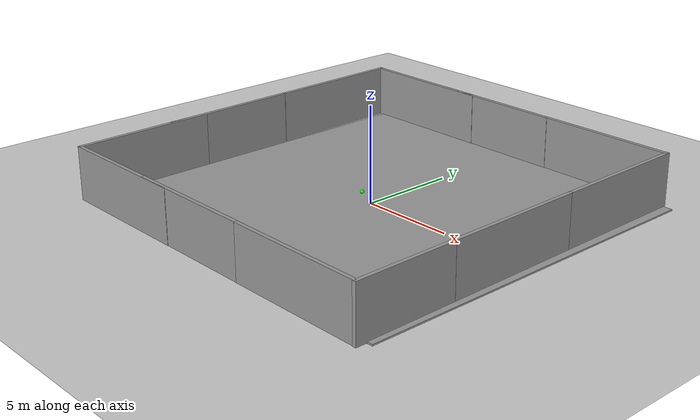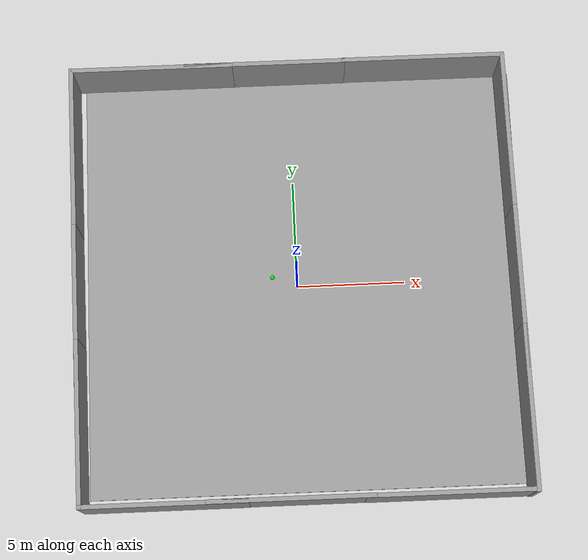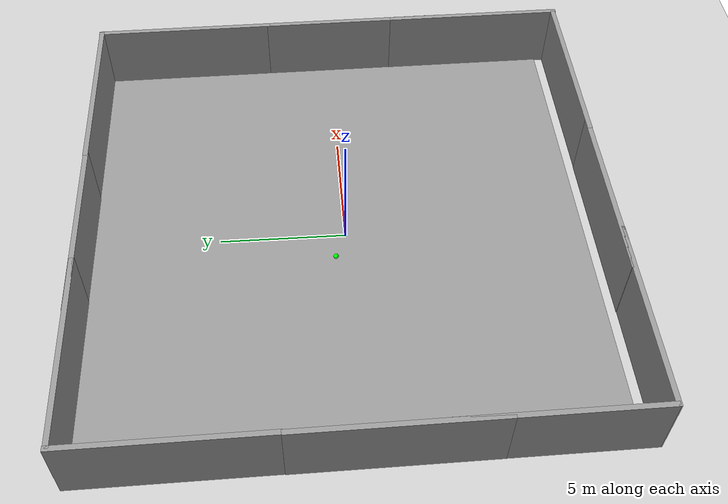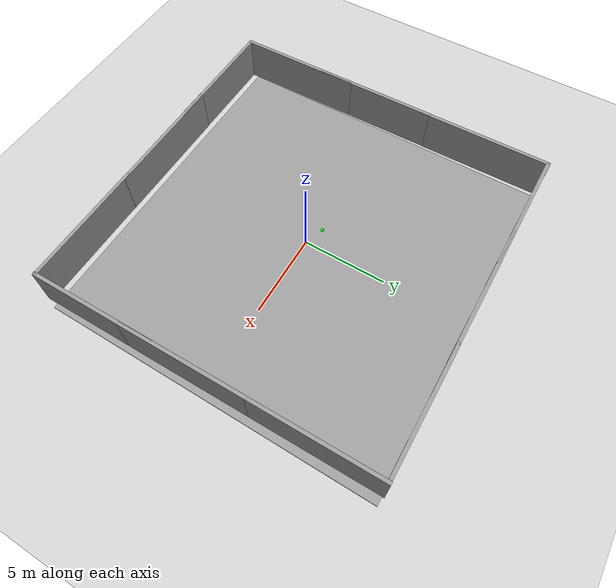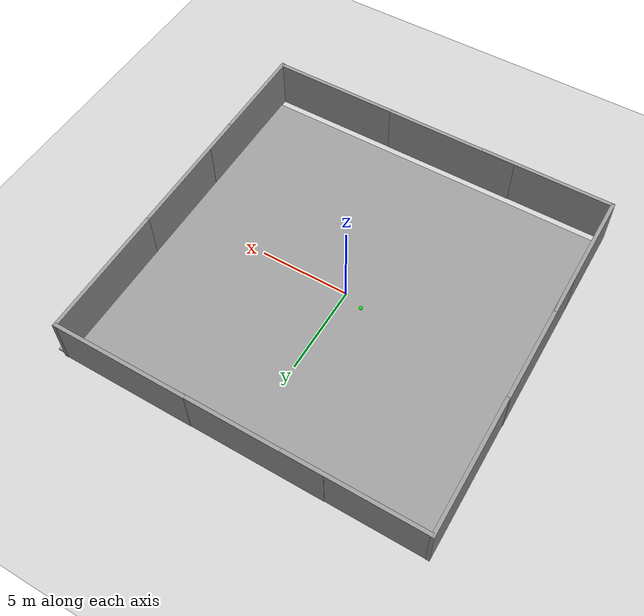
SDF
<sdf version="1.7">
 <world name="default">
  <light name="sun" type="directional">
   <pose>0 0 10 0 -0 0</pose>
   <diffuse>0.8 0.8 0.8 1</diffuse>
   <specular>0.2 0.2 0.2 1</specular>
   <attenuation>
    <range>1000</range>
    <constant>0.9</constant>
    <linear>0.01</linear>
    <quadratic>0.001</quadratic>
   </attenuation>
   <direction>-0.5 0.1 -0.9</direction>
   <spot><inner_angle>0</inner_angle><outer_angle>0</outer_angle><falloff>0</falloff></spot>
  </light>
  <gravity>0 0 -9.8</gravity>
  <magnetic_field>6e-06 2.3e-05 -4.2e-05</magnetic_field>
  <atmosphere type="adiabatic"/>
  <physics type="ode">
   <max_step_size>0.001</max_step_size>
   <real_time_factor>1</real_time_factor>
   <real_time_update_rate>1000</real_time_update_rate>
  </physics>
  <scene><ambient>0.4 0.4 0.4 1</ambient><background>0.7 0.7 0.7 1</background><shadows>1</shadows></scene>
  <spherical_coordinates>
   <surface_model>EARTH_WGS84</surface_model>
   <latitude_deg>0</latitude_deg>
   <longitude_deg>0</longitude_deg>
   <elevation>0</elevation>
   <heading_deg>0</heading_deg>
  </spherical_coordinates>
  <model name="ground_plane">
   <static>1</static>
   <link name="link">
    <collision name="collision">
     <geometry><plane><normal>0 0 1</normal><size>100 100</size></plane></geometry>
     <surface><friction><ode><mu>100</mu><mu2>50</mu2></ode></friction></surface>
    </collision>
    <visual name="visual">
     <cast_shadows>0</cast_shadows>
     <geometry><plane><normal>0 0 1</normal><size>100 100</size></plane></geometry>
     <material>
      <script><uri>file://media/materials/scripts/gazebo.material</uri><name>Gazebo/Grey</name></script>
     </material>
    </visual>
   </link>
  </model>
  <model name="unit_sphere_coloured">
   <link name="link">
    <inertial>
     <mass>0.00869617</mass>
     <inertia>
      <ixx>3.67736e-05</ixx>
      <ixy>0</ixy>
      <ixz>0</ixz>
      <iyy>3.67736e-05</iyy>
      <iyz>0</iyz>
      <izz>3.67736e-05</izz>
     </inertia>
    </inertial>
    <visual name="visual">
     <geometry><sphere><radius>0.102819</radius></sphere></geometry>
     <material>
      <script><name>Gazebo/Grey</name><uri>file://media/materials/scripts/gazebo.material</uri></script>
      <shader type="pixel"><normal_map>__default__</normal_map></shader>
      <ambient>0 1 0 0</ambient>
      <diffuse>0.7 0.7 0.7 1</diffuse>
      <specular>0.01 0.01 0.01 1</specular>
      <emissive>0 0 0 1</emissive>
     </material>
    </visual>
    <collision name="collision">
     <geometry><sphere><radius>0.102819</radius></sphere></geometry>
     <surface>
      <friction>
       <ode><mu>1</mu><mu2>1</mu2><fdir1>0 0 0</fdir1><slip1>0</slip1><slip2>0</slip2></ode>
       <torsional>
        <coefficient>1</coefficient>
        <patch_radius>0</patch_radius>
        <surface_radius>0</surface_radius>
        <use_patch_radius>1</use_patch_radius>
        <ode><slip>0</slip></ode>
       </torsional>
      </friction>
      <bounce><restitution_coefficient>0</restitution_coefficient><threshold>1e+06</threshold></bounce>
      <contact>
       <collide_without_contact>0</collide_without_contact>
       <collide_without_contact_bitmask>1</collide_without_contact_bitmask>
       <collide_bitmask>1</collide_bitmask>
       <ode>
        <soft_cfm>0</soft_cfm>
        <soft_erp>0.2</soft_erp>
        <kp>1e+13</kp>
        <kd>1</kd>
        <max_vel>0.01</max_vel>
        <min_depth>0</min_depth>
       </ode>
       <bullet>
        <split_impulse>1</split_impulse>
        <split_impulse_penetration_threshold>-0.01</split_impulse_penetration_threshold>
        <soft_cfm>0</soft_cfm>
        <soft_erp>0.2</soft_erp>
        <kp>1e+13</kp>
        <kd>1</kd>
       </bullet>
      </contact>
     </surface>
    </collision>
   </link>
   <static>0</static>
   <pose>-1.13967 0.449403 0.15581 0 -0 0</pose>
  </model>
  <model name="grey_wall">
   <static>1</static>
   <link name="link">
    <pose>0 0 1.4 0 -0 0</pose>
    <collision name="collision"><geometry><box><size>7.5 0.2 2.8</size></box></geometry></collision>
    <visual name="visual">
     <cast_shadows>0</cast_shadows>
     <geometry><box><size>7.5 0.2 2.8</size></box></geometry>
     <material>
      <script>
       <uri>model://grey_wall/materials/scripts</uri>
       <uri>model://grey_wall/materials/textures</uri>
       <name>vrc/grey_wall</name>
      </script>
     </material>
    </visual>
   </link>
   <pose>6.23127 10.0915 0 0 -0 0</pose>
  </model>
  <model name="grey_wall_clone">
   <static>1</static>
   <link name="link">
    <pose>0 0 1.4 0 -0 0</pose>
    <collision name="collision"><geometry><box><size>7.5 0.2 2.8</size></box></geometry></collision>
    <visual name="visual">
     <cast_shadows>0</cast_shadows>
     <geometry><box><size>7.5 0.2 2.8</size></box></geometry>
     <material>
      <script>
       <uri>model://grey_wall/materials/scripts</uri>
       <uri>model://grey_wall/materials/textures</uri>
       <name>vrc/grey_wall</name>
      </script>
     </material>
    </visual>
   </link>
   <pose>-1.12267 10.076 0 0 -0 0</pose>
  </model>
  <model name="grey_wall_clone_clone_0">
   <static>1</static>
   <link name="link">
    <pose>0 0 1.4 0 -0 0</pose>
    <collision name="collision"><geometry><box><size>7.5 0.2 2.8</size></box></geometry></collision>
    <visual name="visual">
     <cast_shadows>0</cast_shadows>
     <geometry><box><size>7.5 0.2 2.8</size></box></geometry>
     <material>
      <script>
       <uri>model://grey_wall/materials/scripts</uri>
       <uri>model://grey_wall/materials/textures</uri>
       <name>vrc/grey_wall</name>
      </script>
     </material>
    </visual>
   </link>
   <pose>9.98254 6.45586 0 0 0 -1.55978</pose>
  </model>
  <model name="grey_wall_clone_clone_0_clone">
   <static>1</static>
   <link name="link">
    <pose>0 0 1.4 0 -0 0</pose>
    <collision name="collision"><geometry><box><size>7.5 0.2 2.8</size></box></geometry></collision>
    <visual name="visual">
     <cast_shadows>0</cast_shadows>
     <geometry><box><size>7.5 0.2 2.8</size></box></geometry>
     <material>
      <script>
       <uri>model://grey_wall/materials/scripts</uri>
       <uri>model://grey_wall/materials/textures</uri>
       <name>vrc/grey_wall</name>
      </script>
     </material>
    </visual>
   </link>
   <pose>10.0635 -0.943736 0 0 0 -1.55978</pose>
  </model>
  <model name="grey_wall_clone_clone_0_clone_0">
   <static>1</static>
   <link name="link">
    <pose>0 0 1.4 0 -0 0</pose>
    <collision name="collision"><geometry><box><size>7.5 0.2 2.8</size></box></geometry></collision>
    <visual name="visual">
     <cast_shadows>0</cast_shadows>
     <geometry><box><size>7.5 0.2 2.8</size></box></geometry>
     <material>
      <script>
       <uri>model://grey_wall/materials/scripts</uri>
       <uri>model://grey_wall/materials/textures</uri>
       <name>vrc/grey_wall</name>
      </script>
     </material>
    </visual>
   </link>
   <pose>10.1192 -6.43728 0 0 0 -1.55978</pose>
  </model>
  <model name="grey_wall_clone_0">
   <static>1</static>
   <link name="link">
    <pose>0 0 1.4 0 -0 0</pose>
    <collision name="collision"><geometry><box><size>7.5 0.2 2.8</size></box></geometry></collision>
    <visual name="visual">
     <cast_shadows>0</cast_shadows>
     <geometry><box><size>7.5 0.2 2.8</size></box></geometry>
     <material>
      <script>
       <uri>model://grey_wall/materials/scripts</uri>
       <uri>model://grey_wall/materials/textures</uri>
       <name>vrc/grey_wall</name>
      </script>
     </material>
    </visual>
   </link>
   <pose>6.40026 -10.0578 0 0 -0 0</pose>
  </model>
  <model name="grey_wall_clone_0_clone">
   <static>1</static>
   <link name="link">
    <pose>0 0 1.4 0 -0 0</pose>
    <collision name="collision"><geometry><box><size>7.5 0.2 2.8</size></box></geometry></collision>
    <visual name="visual">
     <cast_shadows>0</cast_shadows>
     <geometry><box><size>7.5 0.2 2.8</size></box></geometry>
     <material>
      <script>
       <uri>model://grey_wall/materials/scripts</uri>
       <uri>model://grey_wall/materials/textures</uri>
       <name>vrc/grey_wall</name>
      </script>
     </material>
    </visual>
   </link>
   <pose>-0.656063 -10.0445 0 0 -0 0</pose>
  </model>
  <model name="grey_wall_clone_0_clone_0">
   <static>1</static>
   <link name="link">
    <pose>0 0 1.4 0 -0 0</pose>
    <collision name="collision"><geometry><box><size>7.5 0.2 2.8</size></box></geometry></collision>
    <visual name="visual">
     <cast_shadows>0</cast_shadows>
     <geometry><box><size>7.5 0.2 2.8</size></box></geometry>
     <material>
      <script>
       <uri>model://grey_wall/materials/scripts</uri>
       <uri>model://grey_wall/materials/textures</uri>
       <name>vrc/grey_wall</name>
      </script>
     </material>
    </visual>
   </link>
   <pose>-6.24909 -10.0607 0 0 -0 0</pose>
  </model>
  <model name="grey_wall_clone_clone_0_clone_1">
   <static>1</static>
   <link name="link">
    <pose>0 0 1.4 0 -0 0</pose>
    <collision name="collision"><geometry><box><size>7.5 0.2 2.8</size></box></geometry></collision>
    <visual name="visual">
     <cast_shadows>0</cast_shadows>
     <geometry><box><size>7.5 0.2 2.8</size></box></geometry>
     <material>
      <script>
       <uri>model://grey_wall/materials/scripts</uri>
       <uri>model://grey_wall/materials/textures</uri>
       <name>vrc/grey_wall</name>
      </script>
     </material>
    </visual>
   </link>
   <pose>-10.0791 6.4268 0 0 0 -1.55978</pose>
  </model>
  <model name="grey_wall_clone_clone_0_clone_2">
   <static>1</static>
   <link name="link">
    <pose>0 0 1.4 0 -0 0</pose>
    <collision name="collision"><geometry><box><size>7.5 0.2 2.8</size></box></geometry></collision>
    <visual name="visual">
     <cast_shadows>0</cast_shadows>
     <geometry><box><size>7.5 0.2 2.8</size></box></geometry>
     <material>
      <script>
       <uri>model://grey_wall/materials/scripts</uri>
       <uri>model://grey_wall/materials/textures</uri>
       <name>vrc/grey_wall</name>
      </script>
     </material>
    </visual>
   </link>
   <pose>-10.0117 -1.03087 0 0 0 -1.55978</pose>
  </model>
  <model name="grey_wall_clone_clone_0_clone_3">
   <static>1</static>
   <link name="link">
    <pose>0 0 1.4 0 -0 0</pose>
    <collision name="collision"><geometry><box><size>7.5 0.2 2.8</size></box></geometry></collision>
    <visual name="visual">
     <cast_shadows>0</cast_shadows>
     <geometry><box><size>7.5 0.2 2.8</size></box></geometry>
     <material>
      <script>
       <uri>model://grey_wall/materials/scripts</uri>
       <uri>model://grey_wall/materials/textures</uri>
       <name>vrc/grey_wall</name>
      </script>
     </material>
    </visual>
   </link>
   <pose>-9.94893 -6.36219 0 0 0 -1.55978</pose>
  </model>
  <model name="grey_wall_clone_clone">
   <static>1</static>
   <link name="link">
    <pose>0 0 1.4 0 -0 0</pose>
    <collision name="collision"><geometry><box><size>7.5 0.2 2.8</size></box></geometry></collision>
    <visual name="visual">
     <cast_shadows>0</cast_shadows>
     <geometry><box><size>7.5 0.2 2.8</size></box></geometry>
     <material>
      <script>
       <uri>model://grey_wall/materials/scripts</uri>
       <uri>model://grey_wall/materials/textures</uri>
       <name>vrc/grey_wall</name>
      </script>
     </material>
    </visual>
   </link>
   <pose>-6.37071 10.0612 0 0 -0 0</pose>
  </model>
  <model name="coloured_ground_plane">
   <link name="link">
    <inertial>
     <mass>1</mass>
     <inertia>
      <ixx>0.166667</ixx>
      <ixy>0</ixy>
      <ixz>0</ixz>
      <iyy>0.166667</iyy>
      <iyz>0</iyz>
      <izz>0.166667</izz>
     </inertia>
    </inertial>
    <visual name="visual">
     <geometry><box><size>20.2987 19.6837 0.142016</size></box></geometry>
     <material>
      <script><name>Gazebo/Grey</name><uri>file://media/materials/scripts/gazebo.material</uri></script>
      <shader type="pixel"><normal_map>__default__</normal_map></shader>
      <ambient>1 1 1 1</ambient>
      <diffuse>1 1 1 1</diffuse>
      <specular>1 1 1 1</specular>
      <emissive>1 1 1 1</emissive>
     </material>
    </visual>
    <collision name="collision">
     <geometry><box><size>20.2987 19.6837 0.142016</size></box></geometry>
     <surface>
      <friction>
       <ode><mu>1</mu><mu2>1</mu2><fdir1>0 0 0</fdir1><slip1>0</slip1><slip2>0</slip2></ode>
       <torsional>
        <coefficient>1</coefficient>
        <patch_radius>0</patch_radius>
        <surface_radius>0</surface_radius>
        <use_patch_radius>1</use_patch_radius>
        <ode><slip>0</slip></ode>
       </torsional>
      </friction>
      <bounce><restitution_coefficient>0</restitution_coefficient><threshold>1e+06</threshold></bounce>
      <contact>
       <collide_without_contact>0</collide_without_contact>
       <collide_without_contact_bitmask>1</collide_without_contact_bitmask>
       <collide_bitmask>1</collide_bitmask>
       <ode>
        <soft_cfm>0</soft_cfm>
        <soft_erp>0.2</soft_erp>
        <kp>1e+13</kp>
        <kd>1</kd>
        <max_vel>0.01</max_vel>
        <min_depth>0</min_depth>
       </ode>
       <bullet>
        <split_impulse>1</split_impulse>
        <split_impulse_penetration_threshold>-0.01</split_impulse_penetration_threshold>
        <soft_cfm>0</soft_cfm>
        <soft_erp>0.2</soft_erp>
        <kp>1e+13</kp>
        <kd>1</kd>
       </bullet>
      </contact>
     </surface>
    </collision>
   </link>
   <static>0</static>
   <pose>0.388115 0.256467 -0.016833 1e-05 -0 0</pose>
  </model>
 </world>
</sdf>
